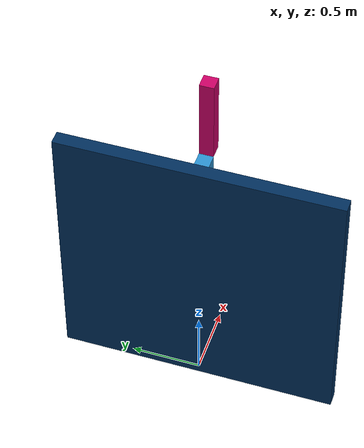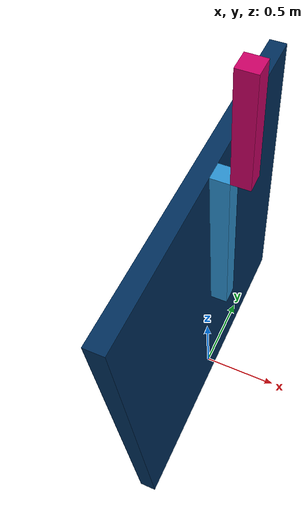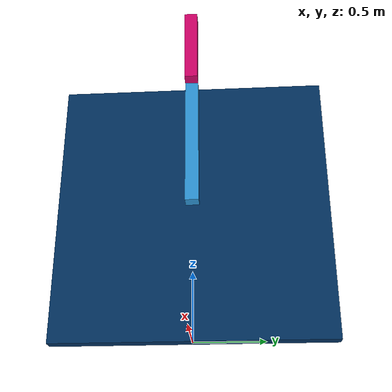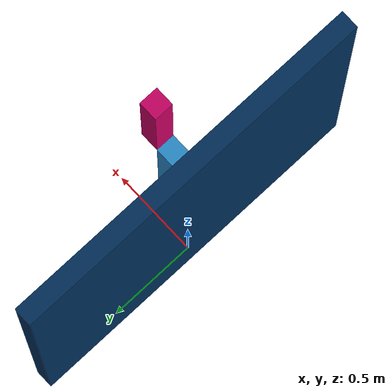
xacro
<?xml version="1.0"?>
<robot xmlns:xacro="http://www.ros.org/wiki/xacro" name="uma_arm">

    <!-- Include robot_core.xacro -->
    <xacro:include filename="robot_core.xacro" />

    <!-- include gazebo xacro file -->

    <!-- Include ros2_control.xacro -->
    <xacro:include filename="ros2_control.xacro" />

</robot>

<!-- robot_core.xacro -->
<robot xmlns:xacro="http://www.ros.org/wiki/xacro" name="uma_arm">

    <!-- Include utils.xacro -->
    <xacro:include filename="utils.xacro" />

    <!-- Include parameters.xacro -->
    <xacro:include filename="parameters.xacro" />

    <!-- Create the empty world link -->
    <link name="world"></link>

    <!-- Fixed joint from world to base link -->
    <joint name="base_joint" type="fixed">
        <origin xyz="0 0 ${base_length/2}" rpy="0 0 0" />
        <parent link="world" />
        <child link="base_link" />
    </joint>

    <link name="base_link">
        <visual>
            <origin xyz="0 0 0" rpy="0 0 0" />
            <geometry>
                <box size="${base_width} ${base_length} ${base_length}" />
            </geometry>
            <material name="uma_blue_dark" />
        </visual>
        <collision>
            <origin xyz="0 0 0" rpy="0 0 0" />
            <geometry>
                <box size="${base_width} ${base_length} ${base_length}" />
            </geometry>
        </collision>
        <xacro:inertial_box mass="${base_mass}" x="${base_width}" y="${base_length}"
            z="${base_length}">
            <origin xyz="${base_width/2} ${base_length/2} ${base_length/2}" rpy="0 ${pi/2} 0" />
        </xacro:inertial_box>
    </link>

    <!-- joint_1 describes the rotation of the joint_1 of the arm -->
    <!-- - The axis of rotation is -1 in Y, so that positive is "up" -->
    <!-- - There's no upper or lower position limits -->
    <joint name="joint_1" type="revolute">
        <origin xyz="${base_width/2 + link_1_width/2} 0 0" rpy="0 0 0" />
        <parent link="base_link" />
        <child link="link_1" />
        <limit lower="0" upper="${2*pi}" velocity="${joint_1_velocity}" effort="${joint_1_effort}" />
        <dynamics damping="1.0" friction="1.0"/>
    </joint>

    <!-- link_1 describes the link_1 of the arm -->
    <link name="link_1">
        <visual>
            <origin xyz="0 0 ${link_1_length/2}" rpy="0 ${pi/2} 0" />
            <geometry>
                <box size="${link_1_length} ${link_1_width} ${link_1_width}" />
            </geometry>
            <material name="uma_blue_light" />
        </visual>
        <collision>
            <origin xyz="0 0 ${link_1_length/2}" rpy="0 ${pi/2} 0" />
            <geometry>
                <box size="${link_1_length} ${link_1_width} ${link_1_width}" />
            </geometry>
        </collision>
        <xacro:inertial_box mass="${link1_mass}" x="${link_1_length}" y="${link_1_width}"
            z="${link_1_width}">
            <origin xyz="${link_1_length/2} 0 0" rpy="0 ${pi/2} 0" />
        </xacro:inertial_box>
    </link>

    <!-- joint_2 describes the rotation of the joint_2 of the arm -->
    <!-- - The axis of rotation is -1 in Y, so that positive is "up" -->
    <!-- - There's no upper or lower limits -->
    <!-- - The maximum velocity is set to 21.9 rad/s (the maximum motors velocity without load:
    210rpm) -->
    <!-- The maximum torque is set to 0.98Nm (the maximum motor torque: 10 Kg.cm) -->
    <joint name="joint_2" type="revolute">
        <origin xyz="${link_1_width/2 + link_2_width/2} 0 ${link_1_length}" rpy="0 0 0" />
        <parent link="link_1" />
        <child link="link_2" />
        <limit lower="0" upper="${2*pi}" velocity="${joint_2_velocity}" effort="${joint_2_effort}" />
        <dynamics damping="1.0" friction="1.0"/>
    </joint>

    <!-- link_2 describes the link_2 of the arm -->
    <link name="link_2">
        <visual>
            <origin xyz="0 0 ${link_2_length/2}" rpy="0 ${pi/2} 0" />
            <geometry>
                <box size="${link_2_length} ${link_2_width} ${link_2_width}" />
            </geometry>
            <material name="uma_pink" />
        </visual>
        <collision>
            <origin xyz="0 0 ${link_2_length/2}" rpy="0 ${pi/2} 0" />
            <geometry>
                <box size="${link_2_length} ${link_2_width} ${link_2_width}" />
            </geometry>
        </collision>
        <xacro:inertial_box mass="${link2_mass}" x="${link_2_length}" y="${link_2_width}"
            z="${link_2_width}">
            <origin xyz="${link_2_length/2} 0 0" rpy="0 ${pi/2} 0" />
        </xacro:inertial_box>
    </link>

    <!-- Fixed joint from joint_2 to joint_EE -->
    <joint name="joint_EE" type="fixed">
        <origin xyz="0 0 ${link_2_length}" rpy="0 0 0" />
        <parent link="link_2" />
        <child link="link_EE" />
    </joint>

    <!-- Create the empty EE link -->
    <link name="link_EE"></link>

</robot>

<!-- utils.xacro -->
<robot xmlns:xacro="http://www.ros.org/wiki/xacro" >

    <!-- This file does not contain a robot description, only useful properties and math -->

    <!-- Specify UMA brand colors -->
    <material name="uma_blue_dark">
        <color rgba="0 0.18 0.36 1"/>
    </material>

    <material name="uma_blue_light">
        <color rgba="0.168 0.569 0.816 1"/>
    </material>

    <material name="uma_blue_water">
        <color rgba="0 0.682 0.78 1"/>
    </material>

    <material name="uma_gray_light">
        <color rgba="0.533 0.545 0.553 1"/>
    </material>

    <material name="uma_gray_dark">
        <color rgba="0.388 0.4 0.416 1"/>
    </material>

    <material name="uma_purple">
        <color rgba="0.345 0.153 0.529 1"/>
    </material>

    <material name="uma_pink">
        <color rgba="0.8 0 0.4 1"/>
    </material>

    <material name="uma_green">
        <color rgba="0.475 0.757 0.275 1"/>
    </material>

    <material name="uma_yellow">
        <color rgba="1 0.914 0.329 1"/>
    </material>

    <!-- Specify basic inertial matrixes calculation -->
    <xacro:macro name="inertial_sphere" params="mass radius *origin">
        <inertial>
            <xacro:insert_block name="origin"/>
            <mass value="${mass}" />
            <inertia ixx="${(2/5) * mass * (radius*radius)}" ixy="0.0" ixz="0.0"
                    iyy="${(2/5) * mass * (radius*radius)}" iyz="0.0"
                    izz="${(2/5) * mass * (radius*radius)}" />
        </inertial>
    </xacro:macro>

    <xacro:macro name="inertial_box" params="mass x y z *origin">
        <inertial>
            <xacro:insert_block name="origin"/>
            <mass value="${mass}" />
            <inertia ixx="${(1/12) * mass * (y*y+z*z)}" ixy="0.0" ixz="0.0"
                    iyy="${(1/12) * mass * (x*x+z*z)}" iyz="0.0"
                    izz="${(1/12) * mass * (x*x+y*y)}" />
        </inertial>
    </xacro:macro>

    <xacro:macro name="inertial_cylinder" params="mass length radius *origin">
        <inertial>
            <xacro:insert_block name="origin"/>
            <mass value="${mass}" />
            <inertia ixx="${(1/12) * mass * (3*radius*radius + length*length)}" ixy="0.0" ixz="0.0"
                    iyy="${(1/12) * mass * (3*radius*radius + length*length)}" iyz="0.0"
                    izz="${(1/2) * mass * (radius*radius)}" />
        </inertial>
    </xacro:macro>

</robot>

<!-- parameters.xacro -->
<robot xmlns:xacro="http://www.ros.org/wiki/xacro">

    <!-- This file does not contain a robot description, only robot parameters -->

    <!-- base parameters-->
    <xacro:property name="base_length" value="2" />
    <xacro:property name="base_width" value="0.1" />
    <xacro:property name="base_mass" value="3.0" />

    <!-- joint_1 parameters -->
    <!-- - The maximum velocity is set to 21.9 rad/s (the maximum motors velocity without load:
    210rpm) -->
    <!-- The maximum torque is set to 0.98Nm (the maximum motor torque: 10 Kg.cm) -->
    <xacro:property name="joint_1_velocity" value="1.0" />
    <xacro:property name="joint_1_effort" value="100" />
    <xacro:property name="joint_1_damping" value="0.8" />

    <!-- joint_2 parameters -->
    <!-- - The maximum velocity is set to 21.9 rad/s (the maximum motors velocity without load:
    210rpm) -->
    <!-- The maximum torque is set to 0.98Nm (the maximum motor torque: 10 Kg.cm) -->
    <xacro:property name="joint_2_velocity" value="1" />
    <xacro:property name="joint_2_effort" value="100" />
    <xacro:property name="joint_2_damping" value="0.8" />

    <!-- link_1 parameters -->
    <xacro:property name="link_1_length" value="1.0" />
    <xacro:property name="link_1_width" value="0.1" />
    <xacro:property name="link1_mass" value="3.0" />

    <!-- link_2 parameters -->
    <xacro:property name="link_2_length" value="0.6" />
    <xacro:property name="link_2_width" value="0.1" />
    <xacro:property name="link2_mass" value="2.0" />

</robot>
